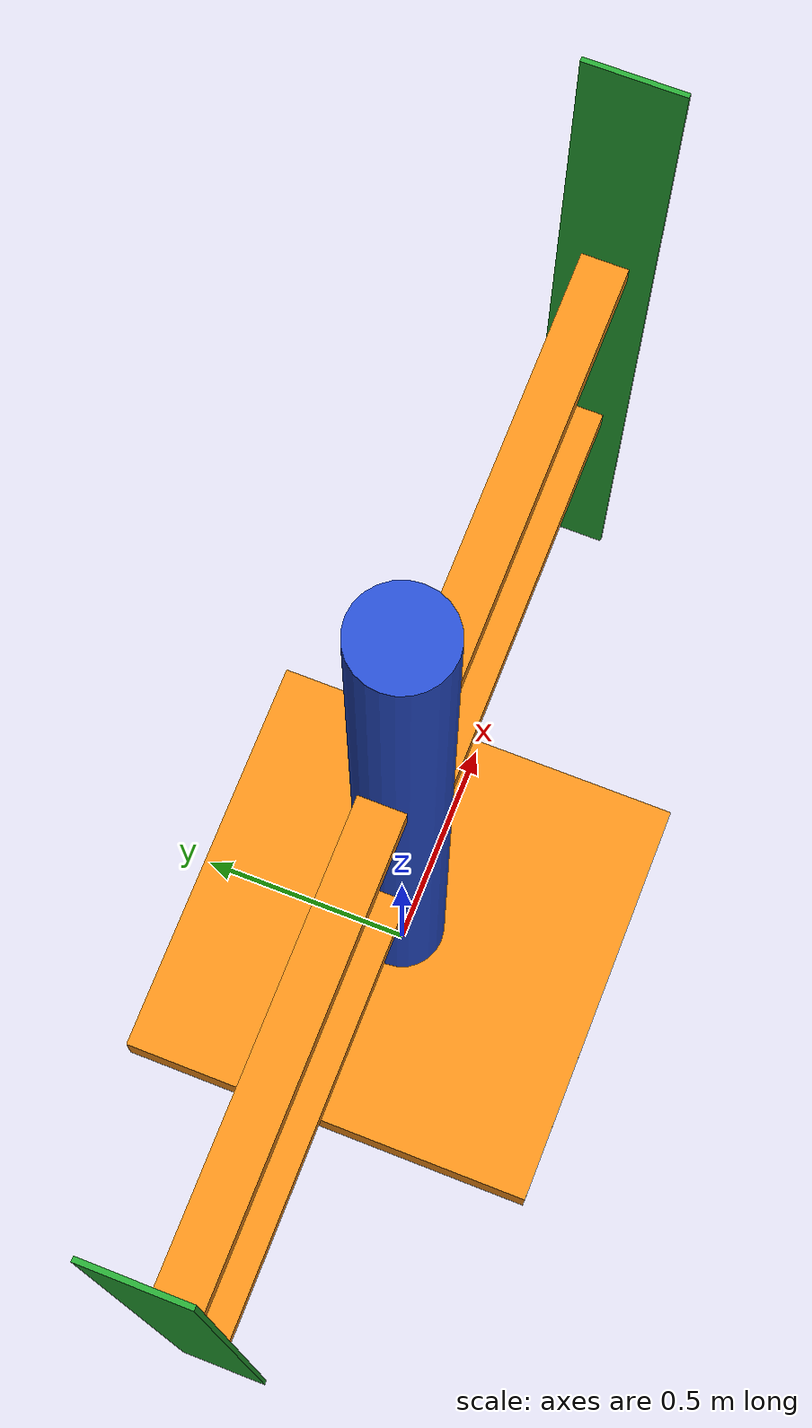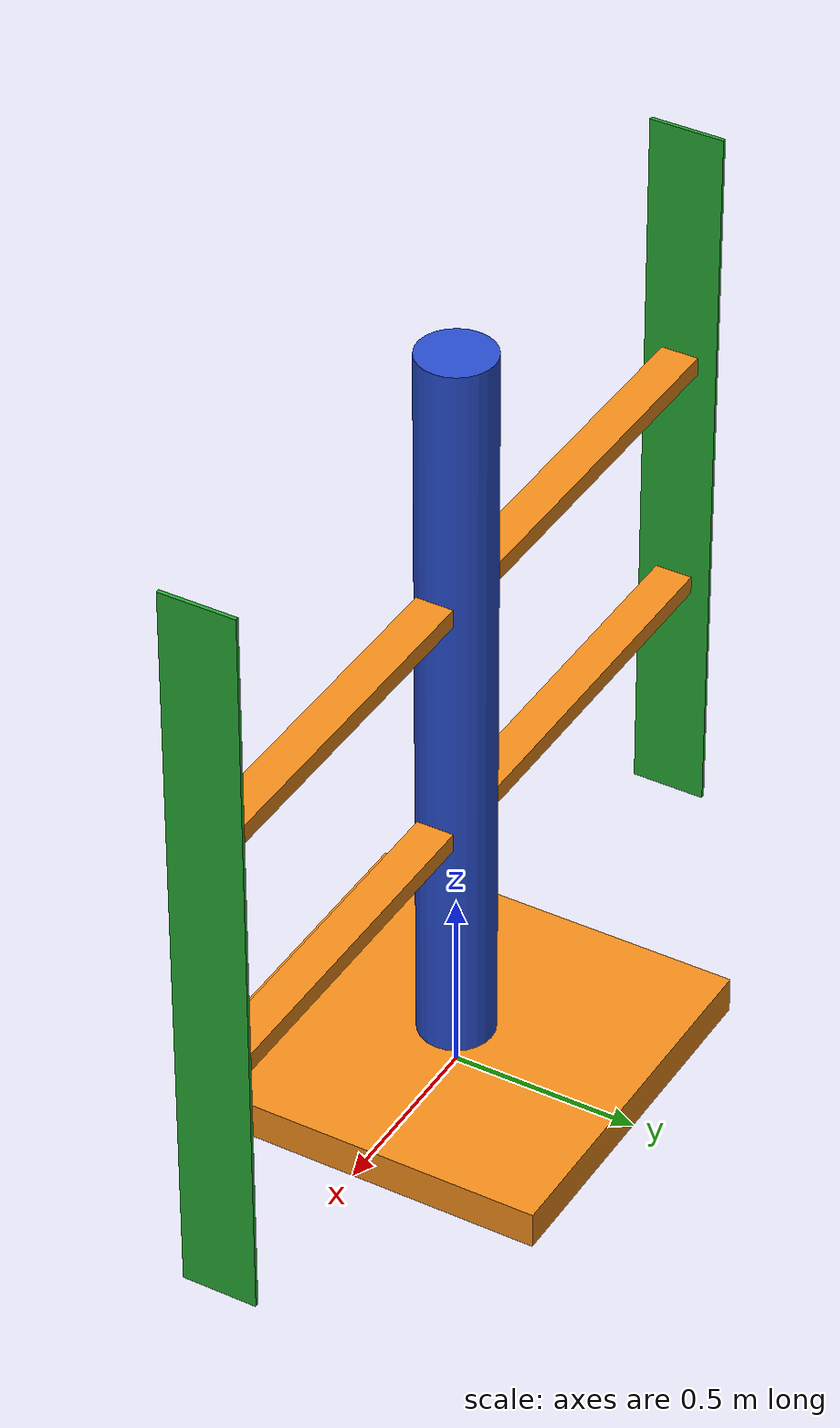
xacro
<?xml version="1.0"?>
<!-- Revolute-Revolute Manipulator -->
<robot name="vawt_1" xmlns:xacro="http://www.ros.org/wiki/xacro">

  <!-- Constants for robot dimensions -->
  <xacro:property name="mass" value="1" /> <!-- arbitrary value for mass -->

  <!-- Import all Gazebo-customization elements, including Gazebo colors -->
  <xacro:include filename="$(find vawt_1)/urdf/vawt_1.gazebo" />
  <!-- Import Rviz colors -->
  <xacro:include filename="$(find vawt_1)/urdf/materials.xacro" />

  <xacro:include filename="$(find vawt_1)/urdf/macros/box_link.xacro" />
  <xacro:include filename="$(find vawt_1)/urdf/macros/cylinder_link.xacro" />
  <xacro:include filename="$(find vawt_1)/urdf/macros/blade_w_struts.xacro" />

  <!-- Used for fixing robot to Gazebo 'base_link' -->
  <link name="world"/>

  <joint name="fixed" type="fixed">
    <parent link="world"/>
    <child link="base"/>
  </joint>

  <!-- Base Link -->
  <xacro:property name="base_width" value="1" />
  <xacro:property name="base_height" value="1" />
  <xacro:property name="base_depth" value="0.1" />

  <xacro:box_link link_name="base" width="${base_width}" height="${base_height}" depth="${base_depth}"
    xyz="0 0 ${base_depth/2}" rpy="0 0 0" material="orange" mass="${mass}"/>

  <joint name="main_shaft_joint" type="continuous">
    <parent link="base"/>
    <child link="main_shaft"/>
    <origin xyz="0 0 ${base_depth + 0.01}"/>
    <axis xyz="0 0 1" />
    <dynamics damping="0.2" friction="1"/>
  </joint>
  <!-- transmission -->
  <transmission name="main_shaft_joint_trans">
    <type>transmission_interface/SimpleTransmission</type>
    <joint name="main_shaft_joint">
      <hardwareInterface>hardware_interface/EffortJointInterface </hardwareInterface>
    </joint>
    <actuator name="main_shaft_motor">
        <hardwareInterface>hardware_interface/EffortJointInterface </hardwareInterface>
        <mechanicalReduction>1</mechanicalReduction>
    </actuator>
  </transmission>

  <!-- main_shaft Link -->
  <xacro:property name="ms_radius" value="0.1" />
  <xacro:property name="ms_length" value="2" />
  <xacro:property name="shaft_name" value="main_shaft" />

  <xacro:cylinder_link link_name="${shaft_name}" length="${ms_length}" radius="${ms_radius}"
    xyz="0 0 ${ms_length/2}" rpy="0 0 0" material="blue" mass="${mass}"/>

  <!-- blade_1  -->
  <xacro:blade_w_struts blade_name="blade_1" parent_name="${shaft_name}" shaft_radius="${ms_radius}"
    shaft_length="${ms_length}" blade_offset="0"/>
  <!-- blade_2  -->
  <xacro:blade_w_struts blade_name="blade_2" parent_name="${shaft_name}" shaft_radius="${ms_radius}"
    shaft_length="${ms_length}" blade_offset="${pi}"/>

</robot>

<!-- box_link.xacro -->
<robot xmlns:xacro="http://www.ros.org/wiki/xacro">

  <xacro:macro name="box_link"
  params="link_name width height depth xyz rpy material mass">
    <link name="${link_name}">
      <collision>
        <origin xyz="${xyz}" rpy="${rpy}"/>
        <geometry>
          <box size="${width} ${height} ${depth}"/>
        </geometry>
      </collision>

      <visual>
        <origin xyz="${xyz}" rpy="${rpy}"/>
        <geometry>
          <box size="${width} ${height} ${depth}"/>
        </geometry>
        <material name="${material}"/>
      </visual>

      <inertial>
        <origin xyz="${xyz}" rpy="${rpy}"/>
        <mass value="${mass}"/>
        <inertia
        ixx="${mass / 12.0 * (height*height + depth*depth)}" ixy="0.0" ixz="0.0"
        iyy="${mass / 12.0 * (width*width + depth*depth)}" iyz="0.0"
        izz="${mass / 12.0 * (width*width + height*height)}"/>
      </inertial>
    </link>
  </xacro:macro>
</robot>

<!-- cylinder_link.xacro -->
<robot xmlns:xacro="http://www.ros.org/wiki/xacro">

  <xacro:macro name="cylinder_link"
  params="link_name length radius xyz rpy material mass">
    <link name="${link_name}">
      <collision>
        <origin xyz="${xyz}" rpy="${rpy}"/>
        <geometry>
          <cylinder length="${length}" radius="${radius}"/>
        </geometry>
      </collision>

      <visual>
        <origin xyz="${xyz}" rpy="${rpy}"/>
        <geometry>
          <cylinder length="${length}" radius="${radius}"/>
        </geometry>
        <material name="${material}"/>
      </visual>

      <inertial>
        <origin xyz="${xyz}" rpy="${rpy}"/>
        <mass value="${mass}"/>
        <inertia
          ixx="${mass / 12.0 * (3*radius*radius + length*length)}" ixy="0.0" ixz="0.0"
          iyy="${mass / 12.0 * (3*radius*radius + length*length)}" iyz="0.0"
          izz="${mass / 2.0 * radius*radius}"/>
        </inertial>
    </link>
  </xacro:macro>
</robot>

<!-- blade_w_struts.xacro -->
<!-- Revolute-Revolute Manipulator -->
<robot name="vawt_1" xmlns:xacro="http://www.ros.org/wiki/xacro">

  <!-- Import box link macro -->
  <xacro:include filename="$(find vawt_1)/urdf/macros/box_link.xacro" />
  <!-- Import cylinder link macro -->
  <xacro:include filename="$(find vawt_1)/urdf/macros/cylinder_link.xacro" />

  <xacro:property name="strut_width" value="0.05" />
  <xacro:property name="strut_height" value="0.1" />
  <xacro:property name="strut_depth" value="1" />

  <!-- Blade with struts macro -->
  <!-- params="blade_name parent_name shaft_radius shaft_length strut_size blade_offset"-->
  <xacro:macro name="blade_w_struts"
  params="blade_name parent_name shaft_radius shaft_length blade_offset">

    <!-- bottom strut joint and link -->
    <xacro:property name="strut_name" value="bottom" />
    <joint name="${blade_name}_${strut_name}_strut_joint" type="fixed">
      <parent link="${parent_name}"/>
      <child link="${blade_name}_${strut_name}_strut"/>
      <origin xyz="0 0 ${shaft_length/3}" rpy="0 0 ${blade_offset}"/>
    </joint>

    <xacro:box_link link_name="${blade_name}_${strut_name}_strut" width="${strut_width}" height="${strut_height}" depth="${strut_depth}"
    xyz="${shaft_radius + strut_depth/2} 0 0" rpy="0 ${pi/2} 0" material="orange" mass="${mass}"/>

    <!-- upper strut joint and link -->
    <xacro:property name="strut_name" value="upper" />
    <joint name="${blade_name}_${strut_name}_strut_joint" type="fixed">
      <parent link="${parent_name}"/>
      <child link="${blade_name}_${strut_name}_strut"/>
      <origin xyz="0 0 ${2*shaft_length/3}" rpy="0 0 ${blade_offset}"/>
    </joint>

    <xacro:box_link link_name="${blade_name}_${strut_name}_strut" width="${strut_width}" height="${strut_height}" depth="${strut_depth}"
    xyz="${shaft_radius + strut_depth/2} 0 0" rpy="0 ${pi/2} 0" material="orange" mass="${mass}"/>

    <!-- blade joint and link -->
    <xacro:property name="blade_width" value="0.2" />
    <xacro:property name="blade_height" value="0.01" />
    <xacro:property name="blade_depth" value="2" />

    <joint name="${blade_name}_joint" type="revolute">
      <parent link="${blade_name}_bottom_strut"/>
      <child link="${blade_name}"/>
      <origin xyz="${shaft_radius + strut_depth} 0 0" rpy="0 0 0"/>
      <axis xyz="0 0 1" />
      <limit effort="300" velocity="100" lower="-1.3" upper="1.3"/>
    </joint>

    <transmission name="${blade_name}_transmission">
      <type>transmission_interface/SimpleTransmission</type>
      <joint name="${blade_name}_joint">
        <hardwareInterface>hardware_interface/PositionJointInterface</hardwareInterface>
      </joint>
      <actuator name="${blade_name}_motor">
        <hardwareInterface>hardware_interface/PositionJointInterface</hardwareInterface>
        <mechanicalReduction>1</mechanicalReduction>
      </actuator>
    </transmission>

    <xacro:box_link link_name="${blade_name}" width="${blade_width}" height="${blade_height}" depth="${blade_depth}"
      xyz="0 0 ${blade_depth/6}" rpy="0 0 ${pi/2}" material="green" mass="${mass}"/>

  </xacro:macro>
</robot>
